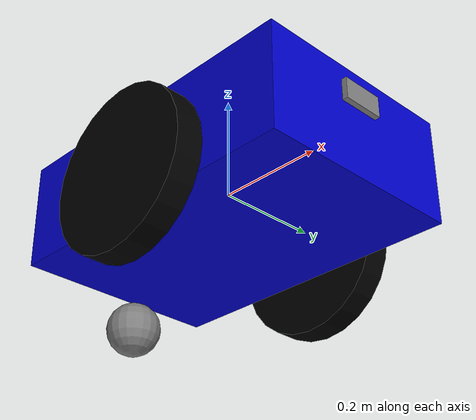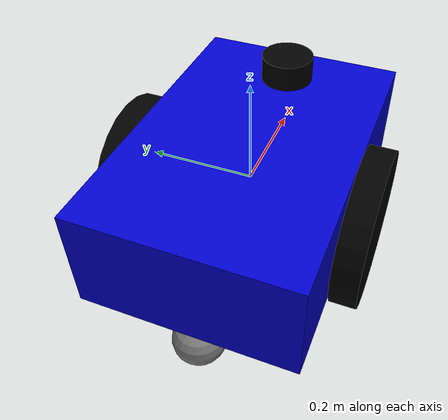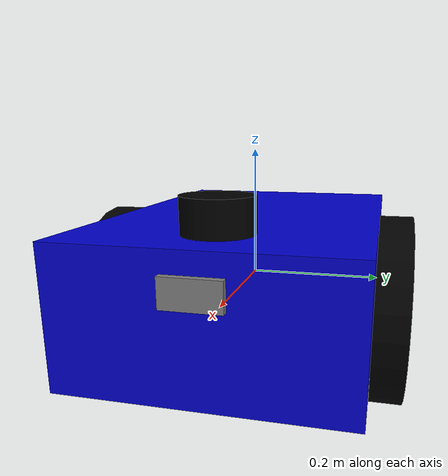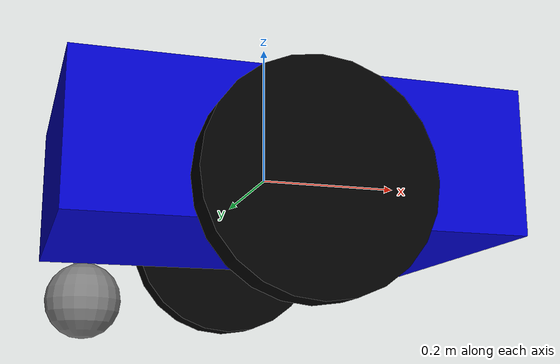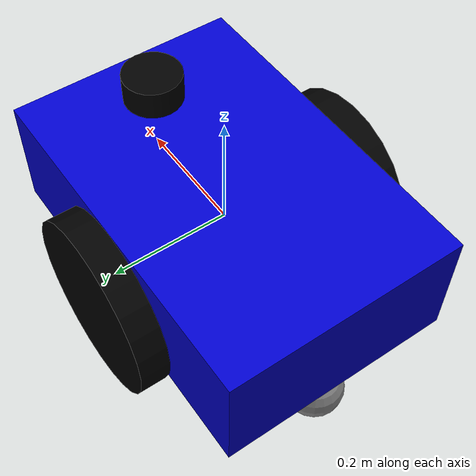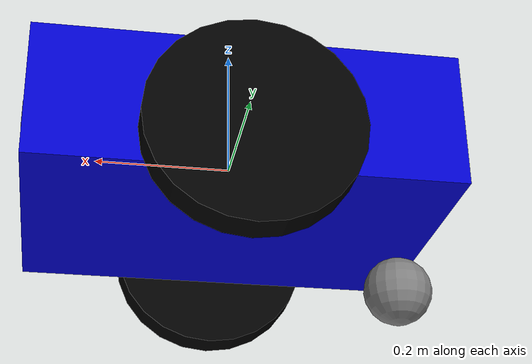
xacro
<?xml version="1.0"?>
<robot xmlns:xacro="http://www.ros.org/wiki/xacro" name="outdoor_robot">

  <!-- Include Gazebo plugins -->
  <xacro:include filename="gazebo_plugins.xacro" />

  <!-- Base Link -->
  <link name="base_link">
    <visual>
      <geometry>
        <box size="0.6 0.4 0.2"/>
      </geometry>
      <material name="blue">
        <color rgba="0 0 0.8 1"/>
      </material>
    </visual>
    <collision>
      <geometry>
        <box size="0.6 0.4 0.2"/>
      </geometry>
    </collision>
    <inertial>
      <mass value="15.0"/>
      <origin xyz="0 0 0"/>
      <inertia ixx="0.25" ixy="0" ixz="0" iyy="0.5" iyz="0" izz="0.65"/>
    </inertial>
  </link>

  <!-- Left Wheel -->
  <link name="left_wheel">
    <visual>
      <geometry>
        <cylinder radius="0.15" length="0.05"/>
      </geometry>
      <material name="black">
        <color rgba="0 0 0 1"/>
      </material>
    </visual>
    <collision>
      <geometry>
        <cylinder radius="0.15" length="0.05"/>
      </geometry>
    </collision>
    <inertial>
      <mass value="2.0"/>
      <origin xyz="0 0 0"/>
      <inertia ixx="0.011" ixy="0" ixz="0" iyy="0.011" iyz="0" izz="0.0225"/>
    </inertial>
  </link>

  <joint name="left_wheel_joint" type="continuous">
    <parent link="base_link"/>
    <child link="left_wheel"/>
    <origin xyz="0 0.225 -0.05" rpy="-1.5708 0 0"/>
    <axis xyz="0 0 1"/>
  </joint>

  <!-- Right Wheel -->
  <link name="right_wheel">
    <visual>
      <geometry>
        <cylinder radius="0.15" length="0.05"/>
      </geometry>
      <material name="black"/>
    </visual>
    <collision>
      <geometry>
        <cylinder radius="0.15" length="0.05"/>
      </geometry>
    </collision>
    <inertial>
      <mass value="2.0"/>
      <origin xyz="0 0 0"/>
      <inertia ixx="0.011" ixy="0" ixz="0" iyy="0.011" iyz="0" izz="0.0225"/>
    </inertial>
  </link>

  <joint name="right_wheel_joint" type="continuous">
    <parent link="base_link"/>
    <child link="right_wheel"/>
    <origin xyz="0 -0.225 -0.05" rpy="-1.5708 0 0"/>
    <axis xyz="0 0 1"/>
  </joint>

  <!-- Caster Wheel -->
  <link name="caster_wheel">
    <visual>
      <geometry>
        <sphere radius="0.05"/>
      </geometry>
      <material name="grey">
        <color rgba="0.5 0.5 0.5 1"/>
      </material>
    </visual>
    <collision>
      <geometry>
        <sphere radius="0.05"/>
      </geometry>
    </collision>
    <inertial>
      <mass value="1.0"/>
      <origin xyz="0 0 0"/>
      <inertia ixx="0.001" ixy="0" ixz="0" iyy="0.001" iyz="0" izz="0.001"/>
    </inertial>
  </link>

  <joint name="caster_joint" type="fixed">
    <parent link="base_link"/>
    <child link="caster_wheel"/>
    <origin xyz="-0.25 0 -0.18" rpy="0 0 0"/>
  </joint>

  <!-- Give caster zero friction in gazebo -->
  <gazebo reference="caster_wheel">
    <mu1>0.001</mu1>
    <mu2>0.001</mu2>
  </gazebo>

  <!-- Sensor Links -->

  <!-- IMU -->
  <link name="imu_link"/>
  <joint name="imu_joint" type="fixed">
    <parent link="base_link"/>
    <child link="imu_link"/>
    <origin xyz="0.0 0.0 0.1" rpy="0 0 0"/>
  </joint>

  <!-- GPS -->
  <link name="gps_link"/>
  <joint name="gps_joint" type="fixed">
    <parent link="base_link"/>
    <child link="gps_link"/>
    <origin xyz="-0.1 0.0 0.1" rpy="0 0 0"/>
  </joint>

  <!-- LiDAR -->
  <link name="lidar_link">
    <visual>
      <geometry>
        <cylinder radius="0.05" length="0.05"/>
      </geometry>
      <material name="black"/>
    </visual>
  </link>
  <joint name="lidar_joint" type="fixed">
    <parent link="base_link"/>
    <child link="lidar_link"/>
    <origin xyz="0.2 0.0 0.125" rpy="0 0 0"/>
  </joint>

  <!-- Camera -->
  <link name="camera_link">
    <visual>
      <geometry>
        <box size="0.02 0.08 0.04"/>
      </geometry>
      <material name="grey"/>
    </visual>
  </link>
  <joint name="camera_joint" type="fixed">
    <parent link="base_link"/>
    <child link="camera_link"/>
    <origin xyz="0.3 0.0 0.05" rpy="0 0 0"/>
  </joint>

  <!-- Optical Frame for Camera -->
  <link name="camera_link_optical"/>
  <joint name="camera_optical_joint" type="fixed">
    <parent link="camera_link"/>
    <child link="camera_link_optical"/>
    <origin xyz="0 0 0" rpy="-1.5708 0 -1.5708"/>
  </joint>

</robot>
